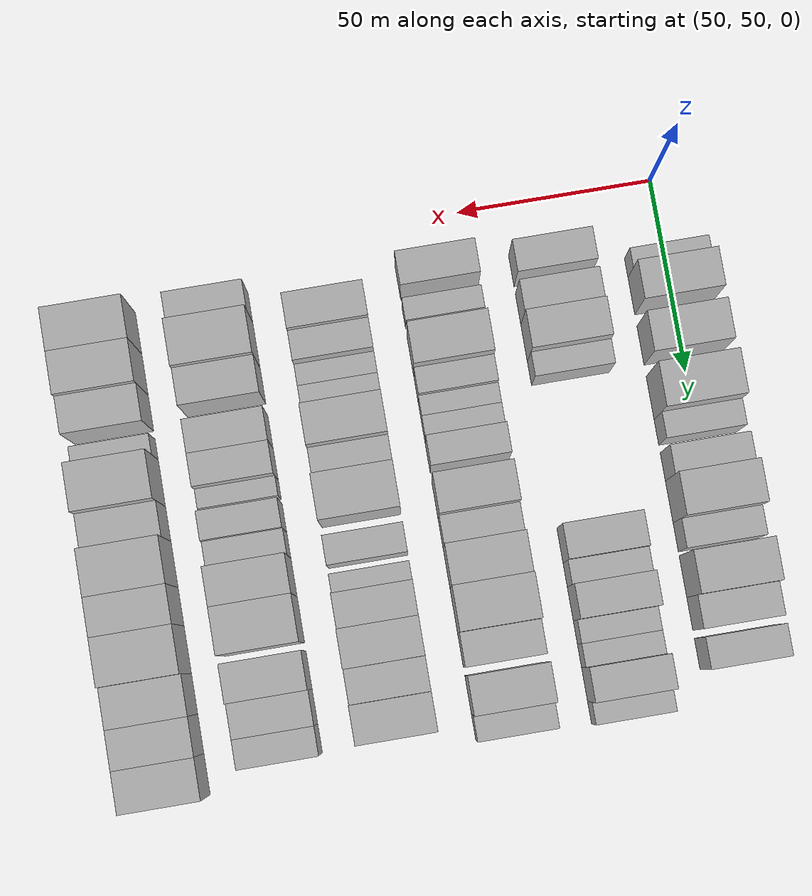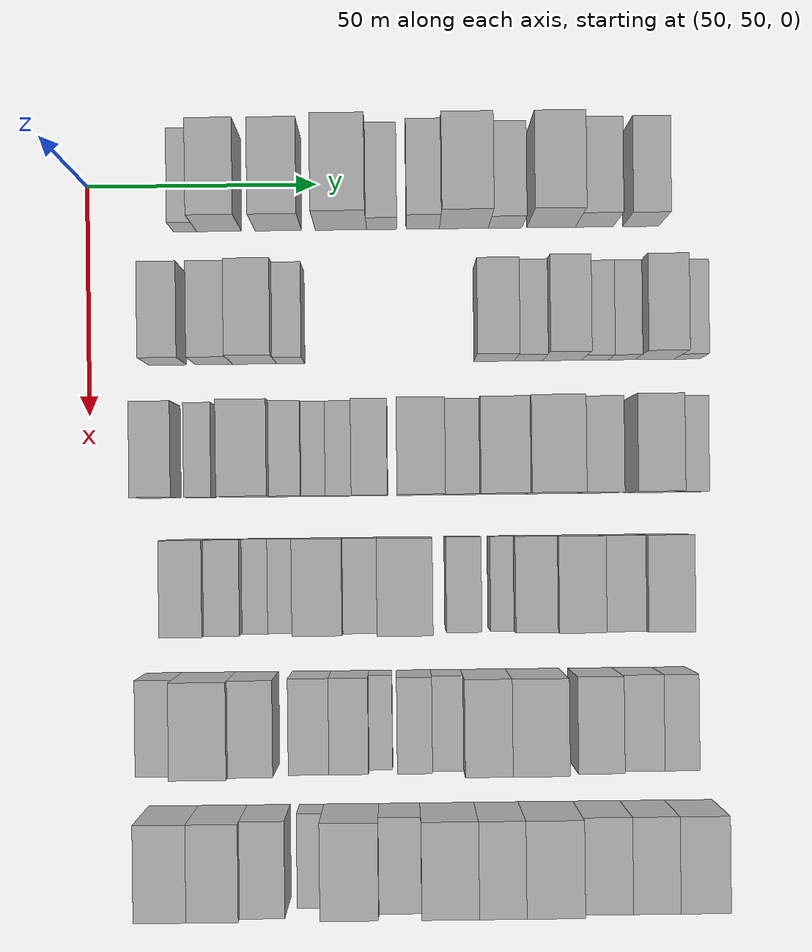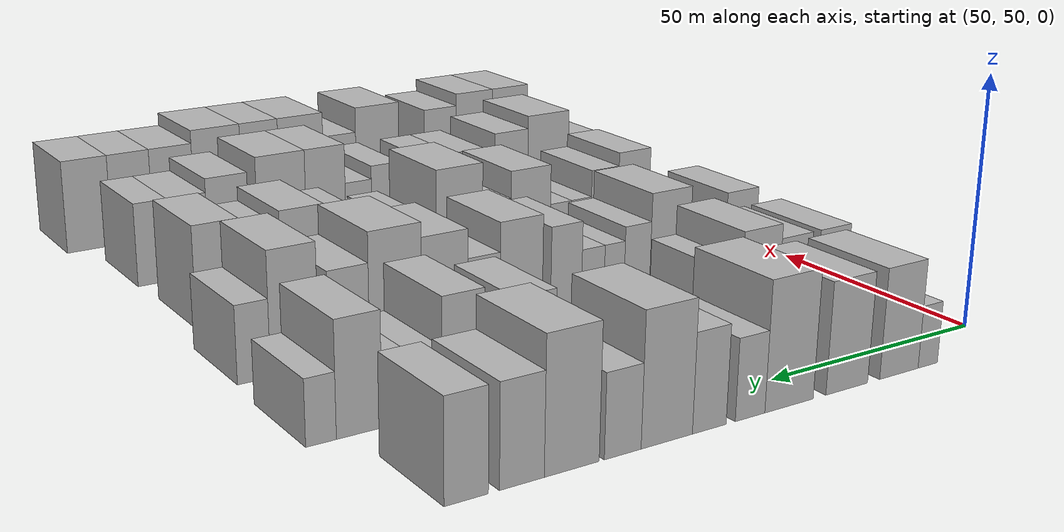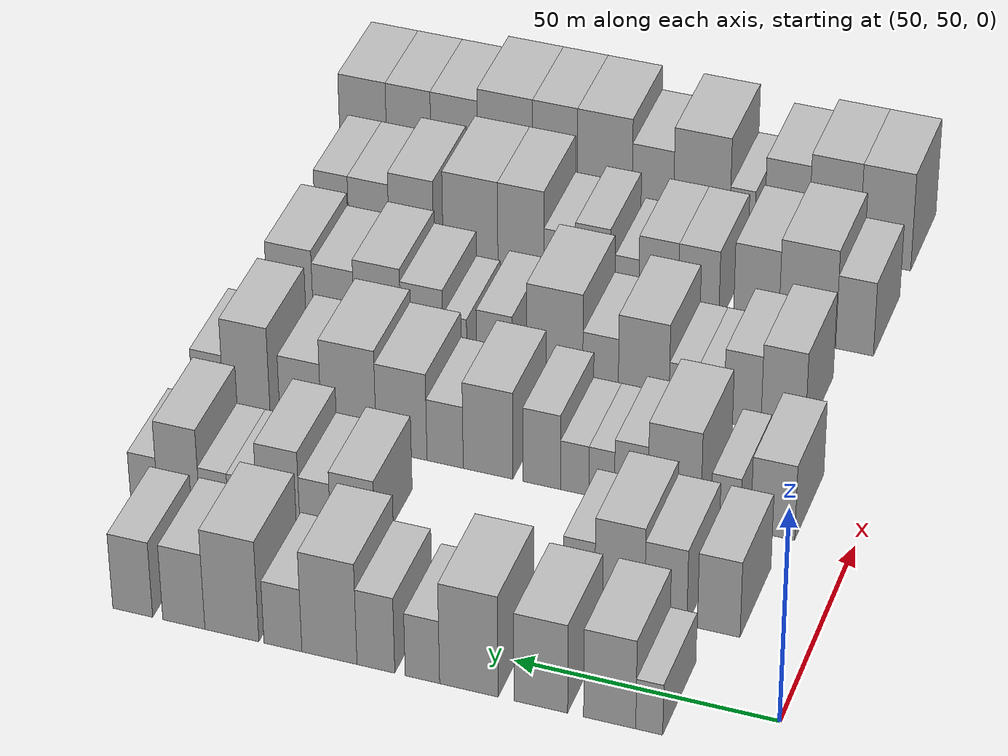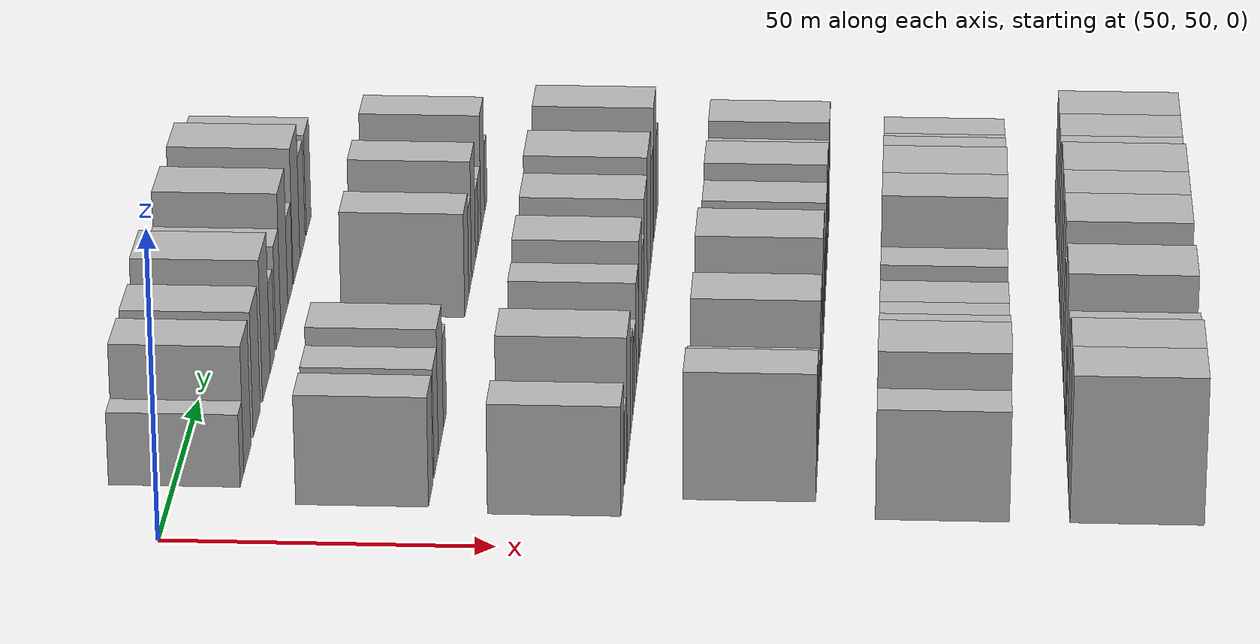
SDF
<sdf version="1.6">
 <world name="default">
  <model name="building_59">
   <static>1</static>
   <pose>50.0000 71.2765 0 0.000000 0.000000 0.000000</pose>
   <link name="link">
    <pose>0 0 6.00 0 0 0</pose>
    <collision name="collision"><geometry><box><size>20.0000 5.0256 12.0000</size></box></geometry></collision>
    <visual name="visual">
     <cast_shadows>0</cast_shadows>
     <geometry><box><size>20.0000 5.0256 12.0000</size></box></geometry>
     <material>
      <script>
       <uri>model://HANNAS_wall/materials/scripts</uri>
       <uri>model://HANNAS_wall/materials/textures</uri>
       <name>vrc/HANNAS_wall</name>
      </script>
     </material>
    </visual>
   </link>
  </model>
  <model name="building_60">
   <static>1</static>
   <pose>50.0000 78.6644 0 0.000000 0.000000 0.000000</pose>
   <link name="link">
    <pose>0 0 10.50 0 0 0</pose>
    <collision name="collision"><geometry><box><size>20.0000 9.7502 21.0000</size></box></geometry></collision>
    <visual name="visual">
     <cast_shadows>0</cast_shadows>
     <geometry><box><size>20.0000 9.7502 21.0000</size></box></geometry>
     <material>
      <script>
       <uri>model://HANNAS_wall/materials/scripts</uri>
       <uri>model://HANNAS_wall/materials/textures</uri>
       <name>vrc/HANNAS_wall</name>
      </script>
     </material>
    </visual>
   </link>
  </model>
  <model name="building_61">
   <static>1</static>
   <pose>50.0000 91.5920 0 0.000000 0.000000 0.000000</pose>
   <link name="link">
    <pose>0 0 10.50 0 0 0</pose>
    <collision name="collision"><geometry><box><size>20.0000 10.1051 21.0000</size></box></geometry></collision>
    <visual name="visual">
     <cast_shadows>0</cast_shadows>
     <geometry><box><size>20.0000 10.1051 21.0000</size></box></geometry>
     <material>
      <script>
       <uri>model://HANNAS_wall/materials/scripts</uri>
       <uri>model://HANNAS_wall/materials/textures</uri>
       <name>vrc/HANNAS_wall</name>
      </script>
     </material>
    </visual>
   </link>
  </model>
  <model name="building_62">
   <static>1</static>
   <pose>50.0000 105.2133 0 0.000000 0.000000 0.000000</pose>
   <link name="link">
    <pose>0 0 12.00 0 0 0</pose>
    <collision name="collision"><geometry><box><size>20.0000 11.1373 24.0000</size></box></geometry></collision>
    <visual name="visual">
     <cast_shadows>0</cast_shadows>
     <geometry><box><size>20.0000 11.1373 24.0000</size></box></geometry>
     <material>
      <script>
       <uri>model://HANNAS_wall/materials/scripts</uri>
       <uri>model://HANNAS_wall/materials/textures</uri>
       <name>vrc/HANNAS_wall</name>
      </script>
     </material>
    </visual>
   </link>
  </model>
  <model name="building_63">
   <static>1</static>
   <pose>50.0000 114.0732 0 0.000000 0.000000 0.000000</pose>
   <link name="link">
    <pose>0 0 7.50 0 0 0</pose>
    <collision name="collision"><geometry><box><size>20.0000 6.5826 15.0000</size></box></geometry></collision>
    <visual name="visual">
     <cast_shadows>0</cast_shadows>
     <geometry><box><size>20.0000 6.5826 15.0000</size></box></geometry>
     <material>
      <script>
       <uri>model://HANNAS_wall/materials/scripts</uri>
       <uri>model://HANNAS_wall/materials/textures</uri>
       <name>vrc/HANNAS_wall</name>
      </script>
     </material>
    </visual>
   </link>
  </model>
  <model name="building_64">
   <static>1</static>
   <pose>50.0000 122.9927 0 0.000000 0.000000 0.000000</pose>
   <link name="link">
    <pose>0 0 9.00 0 0 0</pose>
    <collision name="collision"><geometry><box><size>20.0000 7.2562 18.0000</size></box></geometry></collision>
    <visual name="visual">
     <cast_shadows>0</cast_shadows>
     <geometry><box><size>20.0000 7.2562 18.0000</size></box></geometry>
     <material>
      <script>
       <uri>model://HANNAS_wall/materials/scripts</uri>
       <uri>model://HANNAS_wall/materials/textures</uri>
       <name>vrc/HANNAS_wall</name>
      </script>
     </material>
    </visual>
   </link>
  </model>
  <model name="building_65">
   <static>1</static>
   <pose>50.0000 131.9521 0 0.000000 0.000000 0.000000</pose>
   <link name="link">
    <pose>0 0 12.00 0 0 0</pose>
    <collision name="collision"><geometry><box><size>20.0000 10.6626 24.0000</size></box></geometry></collision>
    <visual name="visual">
     <cast_shadows>0</cast_shadows>
     <geometry><box><size>20.0000 10.6626 24.0000</size></box></geometry>
     <material>
      <script>
       <uri>model://HANNAS_wall/materials/scripts</uri>
       <uri>model://HANNAS_wall/materials/textures</uri>
       <name>vrc/HANNAS_wall</name>
      </script>
     </material>
    </visual>
   </link>
  </model>
  <model name="building_66">
   <static>1</static>
   <pose>50.0000 140.9711 0 0.000000 0.000000 0.000000</pose>
   <link name="link">
    <pose>0 0 7.50 0 0 0</pose>
    <collision name="collision"><geometry><box><size>20.0000 7.3756 15.0000</size></box></geometry></collision>
    <visual name="visual">
     <cast_shadows>0</cast_shadows>
     <geometry><box><size>20.0000 7.3756 15.0000</size></box></geometry>
     <material>
      <script>
       <uri>model://HANNAS_wall/materials/scripts</uri>
       <uri>model://HANNAS_wall/materials/textures</uri>
       <name>vrc/HANNAS_wall</name>
      </script>
     </material>
    </visual>
   </link>
  </model>
  <model name="building_67">
   <static>1</static>
   <pose>50.0000 150.9445 0 0.000000 0.000000 0.000000</pose>
   <link name="link">
    <pose>0 0 12.00 0 0 0</pose>
    <collision name="collision"><geometry><box><size>20.0000 10.5712 24.0000</size></box></geometry></collision>
    <visual name="visual">
     <cast_shadows>0</cast_shadows>
     <geometry><box><size>20.0000 10.5712 24.0000</size></box></geometry>
     <material>
      <script>
       <uri>model://HANNAS_wall/materials/scripts</uri>
       <uri>model://HANNAS_wall/materials/textures</uri>
       <name>vrc/HANNAS_wall</name>
      </script>
     </material>
    </visual>
   </link>
  </model>
  <model name="building_68">
   <static>1</static>
   <pose>50.0000 160.3750 0 0.000000 0.000000 0.000000</pose>
   <link name="link">
    <pose>0 0 9.00 0 0 0</pose>
    <collision name="collision"><geometry><box><size>20.0000 8.2898 18.0000</size></box></geometry></collision>
    <visual name="visual">
     <cast_shadows>0</cast_shadows>
     <geometry><box><size>20.0000 8.2898 18.0000</size></box></geometry>
     <material>
      <script>
       <uri>model://HANNAS_wall/materials/scripts</uri>
       <uri>model://HANNAS_wall/materials/textures</uri>
       <name>vrc/HANNAS_wall</name>
      </script>
     </material>
    </visual>
   </link>
  </model>
  <model name="building_69">
   <static>1</static>
   <pose>50.0000 170.4607 0 0.000000 0.000000 0.000000</pose>
   <link name="link">
    <pose>0 0 9.00 0 0 0</pose>
    <collision name="collision"><geometry><box><size>20.0000 7.8815 18.0000</size></box></geometry></collision>
    <visual name="visual">
     <cast_shadows>0</cast_shadows>
     <geometry><box><size>20.0000 7.8815 18.0000</size></box></geometry>
     <material>
      <script>
       <uri>model://HANNAS_wall/materials/scripts</uri>
       <uri>model://HANNAS_wall/materials/textures</uri>
       <name>vrc/HANNAS_wall</name>
      </script>
     </material>
    </visual>
   </link>
  </model>
  <model name="building_170">
   <static>1</static>
   <pose>79.0000 67.1864 0 0.000000 0.000000 0.000000</pose>
   <link name="link">
    <pose>0 0 9.00 0 0 0</pose>
    <collision name="collision"><geometry><box><size>20.0000 8.1418 18.0000</size></box></geometry></collision>
    <visual name="visual">
     <cast_shadows>0</cast_shadows>
     <geometry><box><size>20.0000 8.1418 18.0000</size></box></geometry>
     <material>
      <script>
       <uri>model://HANNAS_wall/materials/scripts</uri>
       <uri>model://HANNAS_wall/materials/textures</uri>
       <name>vrc/HANNAS_wall</name>
      </script>
     </material>
    </visual>
   </link>
  </model>
  <model name="building_171">
   <static>1</static>
   <pose>79.0000 77.3039 0 0.000000 0.000000 0.000000</pose>
   <link name="link">
    <pose>0 0 9.00 0 0 0</pose>
    <collision name="collision"><geometry><box><size>20.0000 8.0931 18.0000</size></box></geometry></collision>
    <visual name="visual">
     <cast_shadows>0</cast_shadows>
     <geometry><box><size>20.0000 8.0931 18.0000</size></box></geometry>
     <material>
      <script>
       <uri>model://HANNAS_wall/materials/scripts</uri>
       <uri>model://HANNAS_wall/materials/textures</uri>
       <name>vrc/HANNAS_wall</name>
      </script>
     </material>
    </visual>
   </link>
  </model>
  <model name="building_172">
   <static>1</static>
   <pose>79.0000 86.1343 0 0.000000 0.000000 0.000000</pose>
   <link name="link">
    <pose>0 0 10.50 0 0 0</pose>
    <collision name="collision"><geometry><box><size>20.0000 9.5676 21.0000</size></box></geometry></collision>
    <visual name="visual">
     <cast_shadows>0</cast_shadows>
     <geometry><box><size>20.0000 9.5676 21.0000</size></box></geometry>
     <material>
      <script>
       <uri>model://HANNAS_wall/materials/scripts</uri>
       <uri>model://HANNAS_wall/materials/textures</uri>
       <name>vrc/HANNAS_wall</name>
      </script>
     </material>
    </visual>
   </link>
  </model>
  <model name="building_173">
   <static>1</static>
   <pose>79.0000 93.9725 0 0.000000 0.000000 0.000000</pose>
   <link name="link">
    <pose>0 0 7.50 0 0 0</pose>
    <collision name="collision"><geometry><box><size>20.0000 6.1089 15.0000</size></box></geometry></collision>
    <visual name="visual">
     <cast_shadows>0</cast_shadows>
     <geometry><box><size>20.0000 6.1089 15.0000</size></box></geometry>
     <material>
      <script>
       <uri>model://HANNAS_wall/materials/scripts</uri>
       <uri>model://HANNAS_wall/materials/textures</uri>
       <name>vrc/HANNAS_wall</name>
      </script>
     </material>
    </visual>
   </link>
  </model>
  <model name="building_174">
   <static>1</static>
   <pose>79.0000 138.2410 0 0.000000 0.000000 0.000000</pose>
   <link name="link">
    <pose>0 0 9.00 0 0 0</pose>
    <collision name="collision"><geometry><box><size>20.0000 8.8094 18.0000</size></box></geometry></collision>
    <visual name="visual">
     <cast_shadows>0</cast_shadows>
     <geometry><box><size>20.0000 8.8094 18.0000</size></box></geometry>
     <material>
      <script>
       <uri>model://HANNAS_wall/materials/scripts</uri>
       <uri>model://HANNAS_wall/materials/textures</uri>
       <name>vrc/HANNAS_wall</name>
      </script>
     </material>
    </visual>
   </link>
  </model>
  <model name="building_175">
   <static>1</static>
   <pose>79.0000 145.7016 0 0.000000 0.000000 0.000000</pose>
   <link name="link">
    <pose>0 0 7.50 0 0 0</pose>
    <collision name="collision"><geometry><box><size>20.0000 6.1118 15.0000</size></box></geometry></collision>
    <visual name="visual">
     <cast_shadows>0</cast_shadows>
     <geometry><box><size>20.0000 6.1118 15.0000</size></box></geometry>
     <material>
      <script>
       <uri>model://HANNAS_wall/materials/scripts</uri>
       <uri>model://HANNAS_wall/materials/textures</uri>
       <name>vrc/HANNAS_wall</name>
      </script>
     </material>
    </visual>
   </link>
  </model>
  <model name="building_176">
   <static>1</static>
   <pose>79.0000 153.0103 0 0.000000 0.000000 0.000000</pose>
   <link name="link">
    <pose>0 0 10.50 0 0 0</pose>
    <collision name="collision"><geometry><box><size>20.0000 8.5057 21.0000</size></box></geometry></collision>
    <visual name="visual">
     <cast_shadows>0</cast_shadows>
     <geometry><box><size>20.0000 8.5057 21.0000</size></box></geometry>
     <material>
      <script>
       <uri>model://HANNAS_wall/materials/scripts</uri>
       <uri>model://HANNAS_wall/materials/textures</uri>
       <name>vrc/HANNAS_wall</name>
      </script>
     </material>
    </visual>
   </link>
  </model>
  <model name="building_177">
   <static>1</static>
   <pose>79.0000 160.2039 0 0.000000 0.000000 0.000000</pose>
   <link name="link">
    <pose>0 0 6.00 0 0 0</pose>
    <collision name="collision"><geometry><box><size>20.0000 5.8815 12.0000</size></box></geometry></collision>
    <visual name="visual">
     <cast_shadows>0</cast_shadows>
     <geometry><box><size>20.0000 5.8815 12.0000</size></box></geometry>
     <material>
      <script>
       <uri>model://HANNAS_wall/materials/scripts</uri>
       <uri>model://HANNAS_wall/materials/textures</uri>
       <name>vrc/HANNAS_wall</name>
      </script>
     </material>
    </visual>
   </link>
  </model>
  <model name="building_178">
   <static>1</static>
   <pose>79.0000 166.0472 0 0.000000 0.000000 0.000000</pose>
   <link name="link">
    <pose>0 0 6.00 0 0 0</pose>
    <collision name="collision"><geometry><box><size>20.0000 5.8051 12.0000</size></box></geometry></collision>
    <visual name="visual">
     <cast_shadows>0</cast_shadows>
     <geometry><box><size>20.0000 5.8051 12.0000</size></box></geometry>
     <material>
      <script>
       <uri>model://HANNAS_wall/materials/scripts</uri>
       <uri>model://HANNAS_wall/materials/textures</uri>
       <name>vrc/HANNAS_wall</name>
      </script>
     </material>
    </visual>
   </link>
  </model>
  <model name="building_179">
   <static>1</static>
   <pose>79.0000 173.2025 0 0.000000 0.000000 0.000000</pose>
   <link name="link">
    <pose>0 0 10.50 0 0 0</pose>
    <collision name="collision"><geometry><box><size>20.0000 8.5056 21.0000</size></box></geometry></collision>
    <visual name="visual">
     <cast_shadows>0</cast_shadows>
     <geometry><box><size>20.0000 8.5056 21.0000</size></box></geometry>
     <material>
      <script>
       <uri>model://HANNAS_wall/materials/scripts</uri>
       <uri>model://HANNAS_wall/materials/textures</uri>
       <name>vrc/HANNAS_wall</name>
      </script>
     </material>
    </visual>
   </link>
  </model>
  <model name="building_180">
   <static>1</static>
   <pose>79.0000 180.2479 0 0.000000 0.000000 0.000000</pose>
   <link name="link">
    <pose>0 0 6.00 0 0 0</pose>
    <collision name="collision"><geometry><box><size>20.0000 5.5852 12.0000</size></box></geometry></collision>
    <visual name="visual">
     <cast_shadows>0</cast_shadows>
     <geometry><box><size>20.0000 5.5852 12.0000</size></box></geometry>
     <material>
      <script>
       <uri>model://HANNAS_wall/materials/scripts</uri>
       <uri>model://HANNAS_wall/materials/textures</uri>
       <name>vrc/HANNAS_wall</name>
      </script>
     </material>
    </visual>
   </link>
  </model>
  <model name="building_286">
   <static>1</static>
   <pose>108.0000 65.4353 0 0.000000 0.000000 0.000000</pose>
   <link name="link">
    <pose>0 0 9.00 0 0 0</pose>
    <collision name="collision"><geometry><box><size>20.0000 8.5730 18.0000</size></box></geometry></collision>
    <visual name="visual">
     <cast_shadows>0</cast_shadows>
     <geometry><box><size>20.0000 8.5730 18.0000</size></box></geometry>
     <material>
      <script>
       <uri>model://HANNAS_wall/materials/scripts</uri>
       <uri>model://HANNAS_wall/materials/textures</uri>
       <name>vrc/HANNAS_wall</name>
      </script>
     </material>
    </visual>
   </link>
  </model>
  <model name="building_287">
   <static>1</static>
   <pose>108.0000 74.5970 0 0.000000 0.000000 0.000000</pose>
   <link name="link">
    <pose>0 0 6.00 0 0 0</pose>
    <collision name="collision"><geometry><box><size>20.0000 5.7506 12.0000</size></box></geometry></collision>
    <visual name="visual">
     <cast_shadows>0</cast_shadows>
     <geometry><box><size>20.0000 5.7506 12.0000</size></box></geometry>
     <material>
      <script>
       <uri>model://HANNAS_wall/materials/scripts</uri>
       <uri>model://HANNAS_wall/materials/textures</uri>
       <name>vrc/HANNAS_wall</name>
      </script>
     </material>
    </visual>
   </link>
  </model>
  <model name="building_288">
   <static>1</static>
   <pose>108.0000 84.6793 0 0.000000 0.000000 0.000000</pose>
   <link name="link">
    <pose>0 0 10.50 0 0 0</pose>
    <collision name="collision"><geometry><box><size>20.0000 10.4141 21.0000</size></box></geometry></collision>
    <visual name="visual">
     <cast_shadows>0</cast_shadows>
     <geometry><box><size>20.0000 10.4141 21.0000</size></box></geometry>
     <material>
      <script>
       <uri>model://HANNAS_wall/materials/scripts</uri>
       <uri>model://HANNAS_wall/materials/textures</uri>
       <name>vrc/HANNAS_wall</name>
      </script>
     </material>
    </visual>
   </link>
  </model>
  <model name="building_289">
   <static>1</static>
   <pose>108.0000 93.1975 0 0.000000 0.000000 0.000000</pose>
   <link name="link">
    <pose>0 0 7.50 0 0 0</pose>
    <collision name="collision"><geometry><box><size>20.0000 6.6223 15.0000</size></box></geometry></collision>
    <visual name="visual">
     <cast_shadows>0</cast_shadows>
     <geometry><box><size>20.0000 6.6223 15.0000</size></box></geometry>
     <material>
      <script>
       <uri>model://HANNAS_wall/materials/scripts</uri>
       <uri>model://HANNAS_wall/materials/textures</uri>
       <name>vrc/HANNAS_wall</name>
      </script>
     </material>
    </visual>
   </link>
  </model>
  <model name="building_290">
   <static>1</static>
   <pose>108.0000 99.0473 0 0.000000 0.000000 0.000000</pose>
   <link name="link">
    <pose>0 0 6.00 0 0 0</pose>
    <collision name="collision"><geometry><box><size>20.0000 5.0772 12.0000</size></box></geometry></collision>
    <visual name="visual">
     <cast_shadows>0</cast_shadows>
     <geometry><box><size>20.0000 5.0772 12.0000</size></box></geometry>
     <material>
      <script>
       <uri>model://HANNAS_wall/materials/scripts</uri>
       <uri>model://HANNAS_wall/materials/textures</uri>
       <name>vrc/HANNAS_wall</name>
      </script>
     </material>
    </visual>
   </link>
  </model>
  <model name="building_291">
   <static>1</static>
   <pose>108.0000 104.4109 0 0.000000 0.000000 0.000000</pose>
   <link name="link">
    <pose>0 0 6.00 0 0 0</pose>
    <collision name="collision"><geometry><box><size>20.0000 5.6502 12.0000</size></box></geometry></collision>
    <visual name="visual">
     <cast_shadows>0</cast_shadows>
     <geometry><box><size>20.0000 5.6502 12.0000</size></box></geometry>
     <material>
      <script>
       <uri>model://HANNAS_wall/materials/scripts</uri>
       <uri>model://HANNAS_wall/materials/textures</uri>
       <name>vrc/HANNAS_wall</name>
      </script>
     </material>
    </visual>
   </link>
  </model>
  <model name="building_292">
   <static>1</static>
   <pose>108.0000 110.9953 0 0.000000 0.000000 0.000000</pose>
   <link name="link">
    <pose>0 0 9.00 0 0 0</pose>
    <collision name="collision"><geometry><box><size>20.0000 7.5186 18.0000</size></box></geometry></collision>
    <visual name="visual">
     <cast_shadows>0</cast_shadows>
     <geometry><box><size>20.0000 7.5186 18.0000</size></box></geometry>
     <material>
      <script>
       <uri>model://HANNAS_wall/materials/scripts</uri>
       <uri>model://HANNAS_wall/materials/textures</uri>
       <name>vrc/HANNAS_wall</name>
      </script>
     </material>
    </visual>
   </link>
  </model>
  <model name="building_293">
   <static>1</static>
   <pose>108.0000 121.7536 0 0.000000 0.000000 0.000000</pose>
   <link name="link">
    <pose>0 0 10.50 0 0 0</pose>
    <collision name="collision"><geometry><box><size>20.0000 9.9981 21.0000</size></box></geometry></collision>
    <visual name="visual">
     <cast_shadows>0</cast_shadows>
     <geometry><box><size>20.0000 9.9981 21.0000</size></box></geometry>
     <material>
      <script>
       <uri>model://HANNAS_wall/materials/scripts</uri>
       <uri>model://HANNAS_wall/materials/textures</uri>
       <name>vrc/HANNAS_wall</name>
      </script>
     </material>
    </visual>
   </link>
  </model>
  <model name="building_294">
   <static>1</static>
   <pose>108.0000 130.4193 0 0.000000 0.000000 0.000000</pose>
   <link name="link">
    <pose>0 0 7.50 0 0 0</pose>
    <collision name="collision"><geometry><box><size>20.0000 7.3334 15.0000</size></box></geometry></collision>
    <visual name="visual">
     <cast_shadows>0</cast_shadows>
     <geometry><box><size>20.0000 7.3334 15.0000</size></box></geometry>
     <material>
      <script>
       <uri>model://HANNAS_wall/materials/scripts</uri>
       <uri>model://HANNAS_wall/materials/textures</uri>
       <name>vrc/HANNAS_wall</name>
      </script>
     </material>
    </visual>
   </link>
  </model>
  <model name="building_295">
   <static>1</static>
   <pose>108.0000 139.2262 0 0.000000 0.000000 0.000000</pose>
   <link name="link">
    <pose>0 0 10.50 0 0 0</pose>
    <collision name="collision"><geometry><box><size>20.0000 10.2804 21.0000</size></box></geometry></collision>
    <visual name="visual">
     <cast_shadows>0</cast_shadows>
     <geometry><box><size>20.0000 10.2804 21.0000</size></box></geometry>
     <material>
      <script>
       <uri>model://HANNAS_wall/materials/scripts</uri>
       <uri>model://HANNAS_wall/materials/textures</uri>
       <name>vrc/HANNAS_wall</name>
      </script>
     </material>
    </visual>
   </link>
  </model>
  <model name="building_296">
   <static>1</static>
   <pose>108.0000 149.9670 0 0.000000 0.000000 0.000000</pose>
   <link name="link">
    <pose>0 0 12.00 0 0 0</pose>
    <collision name="collision"><geometry><box><size>20.0000 11.2011 24.0000</size></box></geometry></collision>
    <visual name="visual">
     <cast_shadows>0</cast_shadows>
     <geometry><box><size>20.0000 11.2011 24.0000</size></box></geometry>
     <material>
      <script>
       <uri>model://HANNAS_wall/materials/scripts</uri>
       <uri>model://HANNAS_wall/materials/textures</uri>
       <name>vrc/HANNAS_wall</name>
      </script>
     </material>
    </visual>
   </link>
  </model>
  <model name="building_297">
   <static>1</static>
   <pose>108.0000 159.8239 0 0.000000 0.000000 0.000000</pose>
   <link name="link">
    <pose>0 0 9.00 0 0 0</pose>
    <collision name="collision"><geometry><box><size>20.0000 8.5128 18.0000</size></box></geometry></collision>
    <visual name="visual">
     <cast_shadows>0</cast_shadows>
     <geometry><box><size>20.0000 8.5128 18.0000</size></box></geometry>
     <material>
      <script>
       <uri>model://HANNAS_wall/materials/scripts</uri>
       <uri>model://HANNAS_wall/materials/textures</uri>
       <name>vrc/HANNAS_wall</name>
      </script>
     </material>
    </visual>
   </link>
  </model>
  <model name="building_298">
   <static>1</static>
   <pose>108.0000 170.8963 0 0.000000 0.000000 0.000000</pose>
   <link name="link">
    <pose>0 0 12.00 0 0 0</pose>
    <collision name="collision"><geometry><box><size>20.0000 9.6320 24.0000</size></box></geometry></collision>
    <visual name="visual">
     <cast_shadows>0</cast_shadows>
     <geometry><box><size>20.0000 9.6320 24.0000</size></box></geometry>
     <material>
      <script>
       <uri>model://HANNAS_wall/materials/scripts</uri>
       <uri>model://HANNAS_wall/materials/textures</uri>
       <name>vrc/HANNAS_wall</name>
      </script>
     </material>
    </visual>
   </link>
  </model>
  <model name="building_299">
   <static>1</static>
   <pose>108.0000 178.9444 0 0.000000 0.000000 0.000000</pose>
   <link name="link">
    <pose>0 0 7.50 0 0 0</pose>
    <collision name="collision"><geometry><box><size>20.0000 6.4642 15.0000</size></box></geometry></collision>
    <visual name="visual">
     <cast_shadows>0</cast_shadows>
     <geometry><box><size>20.0000 6.4642 15.0000</size></box></geometry>
     <material>
      <script>
       <uri>model://HANNAS_wall/materials/scripts</uri>
       <uri>model://HANNAS_wall/materials/textures</uri>
       <name>vrc/HANNAS_wall</name>
      </script>
     </material>
    </visual>
   </link>
  </model>
  <model name="building_399">
   <static>1</static>
   <pose>137.0000 71.8548 0 0.000000 0.000000 0.000000</pose>
   <link name="link">
    <pose>0 0 10.50 0 0 0</pose>
    <collision name="collision"><geometry><box><size>20.0000 8.8465 21.0000</size></box></geometry></collision>
    <visual name="visual">
     <cast_shadows>0</cast_shadows>
     <geometry><box><size>20.0000 8.8465 21.0000</size></box></geometry>
     <material>
      <script>
       <uri>model://HANNAS_wall/materials/scripts</uri>
       <uri>model://HANNAS_wall/materials/textures</uri>
       <name>vrc/HANNAS_wall</name>
      </script>
     </material>
    </visual>
   </link>
  </model>
  <model name="building_400">
   <static>1</static>
   <pose>137.0000 80.0066 0 0.000000 0.000000 0.000000</pose>
   <link name="link">
    <pose>0 0 9.00 0 0 0</pose>
    <collision name="collision"><geometry><box><size>20.0000 7.4571 18.0000</size></box></geometry></collision>
    <visual name="visual">
     <cast_shadows>0</cast_shadows>
     <geometry><box><size>20.0000 7.4571 18.0000</size></box></geometry>
     <material>
      <script>
       <uri>model://HANNAS_wall/materials/scripts</uri>
       <uri>model://HANNAS_wall/materials/textures</uri>
       <name>vrc/HANNAS_wall</name>
      </script>
     </material>
    </visual>
   </link>
  </model>
  <model name="building_401">
   <static>1</static>
   <pose>137.0000 86.4388 0 0.000000 0.000000 0.000000</pose>
   <link name="link">
    <pose>0 0 6.00 0 0 0</pose>
    <collision name="collision"><geometry><box><size>20.0000 5.4074 12.0000</size></box></geometry></collision>
    <visual name="visual">
     <cast_shadows>0</cast_shadows>
     <geometry><box><size>20.0000 5.4074 12.0000</size></box></geometry>
     <material>
      <script>
       <uri>model://HANNAS_wall/materials/scripts</uri>
       <uri>model://HANNAS_wall/materials/textures</uri>
       <name>vrc/HANNAS_wall</name>
      </script>
     </material>
    </visual>
   </link>
  </model>
  <model name="building_402">
   <static>1</static>
   <pose>137.0000 91.9777 0 0.000000 0.000000 0.000000</pose>
   <link name="link">
    <pose>0 0 6.00 0 0 0</pose>
    <collision name="collision"><geometry><box><size>20.0000 5.6704 12.0000</size></box></geometry></collision>
    <visual name="visual">
     <cast_shadows>0</cast_shadows>
     <geometry><box><size>20.0000 5.6704 12.0000</size></box></geometry>
     <material>
      <script>
       <uri>model://HANNAS_wall/materials/scripts</uri>
       <uri>model://HANNAS_wall/materials/textures</uri>
       <name>vrc/HANNAS_wall</name>
      </script>
     </material>
    </visual>
   </link>
  </model>
  <model name="building_403">
   <static>1</static>
   <pose>137.0000 99.9625 0 0.000000 0.000000 0.000000</pose>
   <link name="link">
    <pose>0 0 10.50 0 0 0</pose>
    <collision name="collision"><geometry><box><size>20.0000 10.2993 21.0000</size></box></geometry></collision>
    <visual name="visual">
     <cast_shadows>0</cast_shadows>
     <geometry><box><size>20.0000 10.2993 21.0000</size></box></geometry>
     <material>
      <script>
       <uri>model://HANNAS_wall/materials/scripts</uri>
       <uri>model://HANNAS_wall/materials/textures</uri>
       <name>vrc/HANNAS_wall</name>
      </script>
     </material>
    </visual>
   </link>
  </model>
  <model name="building_404">
   <static>1</static>
   <pose>137.0000 108.7412 0 0.000000 0.000000 0.000000</pose>
   <link name="link">
    <pose>0 0 7.50 0 0 0</pose>
    <collision name="collision"><geometry><box><size>20.0000 7.2581 15.0000</size></box></geometry></collision>
    <visual name="visual">
     <cast_shadows>0</cast_shadows>
     <geometry><box><size>20.0000 7.2581 15.0000</size></box></geometry>
     <material>
      <script>
       <uri>model://HANNAS_wall/materials/scripts</uri>
       <uri>model://HANNAS_wall/materials/textures</uri>
       <name>vrc/HANNAS_wall</name>
      </script>
     </material>
    </visual>
   </link>
  </model>
  <model name="building_405">
   <static>1</static>
   <pose>137.0000 118.0912 0 0.000000 0.000000 0.000000</pose>
   <link name="link">
    <pose>0 0 12.00 0 0 0</pose>
    <collision name="collision"><geometry><box><size>20.0000 11.4418 24.0000</size></box></geometry></collision>
    <visual name="visual">
     <cast_shadows>0</cast_shadows>
     <geometry><box><size>20.0000 11.4418 24.0000</size></box></geometry>
     <material>
      <script>
       <uri>model://HANNAS_wall/materials/scripts</uri>
       <uri>model://HANNAS_wall/materials/textures</uri>
       <name>vrc/HANNAS_wall</name>
      </script>
     </material>
    </visual>
   </link>
  </model>
  <model name="building_406">
   <static>1</static>
   <pose>137.0000 130.5070 0 0.000000 0.000000 0.000000</pose>
   <link name="link">
    <pose>0 0 7.50 0 0 0</pose>
    <collision name="collision"><geometry><box><size>20.0000 7.3897 15.0000</size></box></geometry></collision>
    <visual name="visual">
     <cast_shadows>0</cast_shadows>
     <geometry><box><size>20.0000 7.3897 15.0000</size></box></geometry>
     <material>
      <script>
       <uri>model://HANNAS_wall/materials/scripts</uri>
       <uri>model://HANNAS_wall/materials/textures</uri>
       <name>vrc/HANNAS_wall</name>
      </script>
     </material>
    </visual>
   </link>
  </model>
  <model name="building_407">
   <static>1</static>
   <pose>137.0000 138.6598 0 0.000000 0.000000 0.000000</pose>
   <link name="link">
    <pose>0 0 6.00 0 0 0</pose>
    <collision name="collision"><geometry><box><size>20.0000 4.9159 12.0000</size></box></geometry></collision>
    <visual name="visual">
     <cast_shadows>0</cast_shadows>
     <geometry><box><size>20.0000 4.9159 12.0000</size></box></geometry>
     <material>
      <script>
       <uri>model://HANNAS_wall/materials/scripts</uri>
       <uri>model://HANNAS_wall/materials/textures</uri>
       <name>vrc/HANNAS_wall</name>
      </script>
     </material>
    </visual>
   </link>
  </model>
  <model name="building_408">
   <static>1</static>
   <pose>137.0000 145.5115 0 0.000000 0.000000 0.000000</pose>
   <link name="link">
    <pose>0 0 9.00 0 0 0</pose>
    <collision name="collision"><geometry><box><size>20.0000 8.7875 18.0000</size></box></geometry></collision>
    <visual name="visual">
     <cast_shadows>0</cast_shadows>
     <geometry><box><size>20.0000 8.7875 18.0000</size></box></geometry>
     <material>
      <script>
       <uri>model://HANNAS_wall/materials/scripts</uri>
       <uri>model://HANNAS_wall/materials/textures</uri>
       <name>vrc/HANNAS_wall</name>
      </script>
     </material>
    </visual>
   </link>
  </model>
  <model name="building_409">
   <static>1</static>
   <pose>137.0000 154.7795 0 0.000000 0.000000 0.000000</pose>
   <link name="link">
    <pose>0 0 10.50 0 0 0</pose>
    <collision name="collision"><geometry><box><size>20.0000 9.7486 21.0000</size></box></geometry></collision>
    <visual name="visual">
     <cast_shadows>0</cast_shadows>
     <geometry><box><size>20.0000 9.7486 21.0000</size></box></geometry>
     <material>
      <script>
       <uri>model://HANNAS_wall/materials/scripts</uri>
       <uri>model://HANNAS_wall/materials/textures</uri>
       <name>vrc/HANNAS_wall</name>
      </script>
     </material>
    </visual>
   </link>
  </model>
  <model name="building_410">
   <static>1</static>
   <pose>137.0000 163.9611 0 0.000000 0.000000 0.000000</pose>
   <link name="link">
    <pose>0 0 9.00 0 0 0</pose>
    <collision name="collision"><geometry><box><size>20.0000 8.6147 18.0000</size></box></geometry></collision>
    <visual name="visual">
     <cast_shadows>0</cast_shadows>
     <geometry><box><size>20.0000 8.6147 18.0000</size></box></geometry>
     <material>
      <script>
       <uri>model://HANNAS_wall/materials/scripts</uri>
       <uri>model://HANNAS_wall/materials/textures</uri>
       <name>vrc/HANNAS_wall</name>
      </script>
     </material>
    </visual>
   </link>
  </model>
  <model name="building_411">
   <static>1</static>
   <pose>137.0000 173.1042 0 0.000000 0.000000 0.000000</pose>
   <link name="link">
    <pose>0 0 10.50 0 0 0</pose>
    <collision name="collision"><geometry><box><size>20.0000 9.6715 21.0000</size></box></geometry></collision>
    <visual name="visual">
     <cast_shadows>0</cast_shadows>
     <geometry><box><size>20.0000 9.6715 21.0000</size></box></geometry>
     <material>
      <script>
       <uri>model://HANNAS_wall/materials/scripts</uri>
       <uri>model://HANNAS_wall/materials/textures</uri>
       <name>vrc/HANNAS_wall</name>
      </script>
     </material>
    </visual>
   </link>
  </model>
  <model name="building_507">
   <static>1</static>
   <pose>166.0000 65.6157 0 0.000000 0.000000 0.000000</pose>
   <link name="link">
    <pose>0 0 9.00 0 0 0</pose>
    <collision name="collision"><geometry><box><size>20.0000 7.7287 18.0000</size></box></geometry></collision>
    <visual name="visual">
     <cast_shadows>0</cast_shadows>
     <geometry><box><size>20.0000 7.7287 18.0000</size></box></geometry>
     <material>
      <script>
       <uri>model://HANNAS_wall/materials/scripts</uri>
       <uri>model://HANNAS_wall/materials/textures</uri>
       <name>vrc/HANNAS_wall</name>
      </script>
     </material>
    </visual>
   </link>
  </model>
  <model name="building_508">
   <static>1</static>
   <pose>166.0000 75.3486 0 0.000000 0.000000 0.000000</pose>
   <link name="link">
    <pose>0 0 12.00 0 0 0</pose>
    <collision name="collision"><geometry><box><size>20.0000 11.7371 24.0000</size></box></geometry></collision>
    <visual name="visual">
     <cast_shadows>0</cast_shadows>
     <geometry><box><size>20.0000 11.7371 24.0000</size></box></geometry>
     <material>
      <script>
       <uri>model://HANNAS_wall/materials/scripts</uri>
       <uri>model://HANNAS_wall/materials/textures</uri>
       <name>vrc/HANNAS_wall</name>
      </script>
     </material>
    </visual>
   </link>
  </model>
  <model name="building_509">
   <static>1</static>
   <pose>166.0000 85.8706 0 0.000000 0.000000 0.000000</pose>
   <link name="link">
    <pose>0 0 10.50 0 0 0</pose>
    <collision name="collision"><geometry><box><size>20.0000 9.3069 21.0000</size></box></geometry></collision>
    <visual name="visual">
     <cast_shadows>0</cast_shadows>
     <geometry><box><size>20.0000 9.3069 21.0000</size></box></geometry>
     <material>
      <script>
       <uri>model://HANNAS_wall/materials/scripts</uri>
       <uri>model://HANNAS_wall/materials/textures</uri>
       <name>vrc/HANNAS_wall</name>
      </script>
     </material>
    </visual>
   </link>
  </model>
  <model name="building_510">
   <static>1</static>
   <pose>166.0000 97.7413 0 0.000000 0.000000 0.000000</pose>
   <link name="link">
    <pose>0 0 9.00 0 0 0</pose>
    <collision name="collision"><geometry><box><size>20.0000 8.4344 18.0000</size></box></geometry></collision>
    <visual name="visual">
     <cast_shadows>0</cast_shadows>
     <geometry><box><size>20.0000 8.4344 18.0000</size></box></geometry>
     <material>
      <script>
       <uri>model://HANNAS_wall/materials/scripts</uri>
       <uri>model://HANNAS_wall/materials/textures</uri>
       <name>vrc/HANNAS_wall</name>
      </script>
     </material>
    </visual>
   </link>
  </model>
  <model name="building_511">
   <static>1</static>
   <pose>166.0000 106.0712 0 0.000000 0.000000 0.000000</pose>
   <link name="link">
    <pose>0 0 9.00 0 0 0</pose>
    <collision name="collision"><geometry><box><size>20.0000 8.2254 18.0000</size></box></geometry></collision>
    <visual name="visual">
     <cast_shadows>0</cast_shadows>
     <geometry><box><size>20.0000 8.2254 18.0000</size></box></geometry>
     <material>
      <script>
       <uri>model://HANNAS_wall/materials/scripts</uri>
       <uri>model://HANNAS_wall/materials/textures</uri>
       <name>vrc/HANNAS_wall</name>
      </script>
     </material>
    </visual>
   </link>
  </model>
  <model name="building_512">
   <static>1</static>
   <pose>166.0000 112.6737 0 0.000000 0.000000 0.000000</pose>
   <link name="link">
    <pose>0 0 6.00 0 0 0</pose>
    <collision name="collision"><geometry><box><size>20.0000 4.9795 12.0000</size></box></geometry></collision>
    <visual name="visual">
     <cast_shadows>0</cast_shadows>
     <geometry><box><size>20.0000 4.9795 12.0000</size></box></geometry>
     <material>
      <script>
       <uri>model://HANNAS_wall/materials/scripts</uri>
       <uri>model://HANNAS_wall/materials/textures</uri>
       <name>vrc/HANNAS_wall</name>
      </script>
     </material>
    </visual>
   </link>
  </model>
  <model name="building_513">
   <static>1</static>
   <pose>166.0000 119.8188 0 0.000000 0.000000 0.000000</pose>
   <link name="link">
    <pose>0 0 9.00 0 0 0</pose>
    <collision name="collision"><geometry><box><size>20.0000 7.3108 18.0000</size></box></geometry></collision>
    <visual name="visual">
     <cast_shadows>0</cast_shadows>
     <geometry><box><size>20.0000 7.3108 18.0000</size></box></geometry>
     <material>
      <script>
       <uri>model://HANNAS_wall/materials/scripts</uri>
       <uri>model://HANNAS_wall/materials/textures</uri>
       <name>vrc/HANNAS_wall</name>
      </script>
     </material>
    </visual>
   </link>
  </model>
  <model name="building_514">
   <static>1</static>
   <pose>166.0000 126.7687 0 0.000000 0.000000 0.000000</pose>
   <link name="link">
    <pose>0 0 7.50 0 0 0</pose>
    <collision name="collision"><geometry><box><size>20.0000 6.5890 15.0000</size></box></geometry></collision>
    <visual name="visual">
     <cast_shadows>0</cast_shadows>
     <geometry><box><size>20.0000 6.5890 15.0000</size></box></geometry>
     <material>
      <script>
       <uri>model://HANNAS_wall/materials/scripts</uri>
       <uri>model://HANNAS_wall/materials/textures</uri>
       <name>vrc/HANNAS_wall</name>
      </script>
     </material>
    </visual>
   </link>
  </model>
  <model name="building_515">
   <static>1</static>
   <pose>166.0000 134.9371 0 0.000000 0.000000 0.000000</pose>
   <link name="link">
    <pose>0 0 12.00 0 0 0</pose>
    <collision name="collision"><geometry><box><size>20.0000 9.7477 24.0000</size></box></geometry></collision>
    <visual name="visual">
     <cast_shadows>0</cast_shadows>
     <geometry><box><size>20.0000 9.7477 24.0000</size></box></geometry>
     <material>
      <script>
       <uri>model://HANNAS_wall/materials/scripts</uri>
       <uri>model://HANNAS_wall/materials/textures</uri>
       <name>vrc/HANNAS_wall</name>
      </script>
     </material>
    </visual>
   </link>
  </model>
  <model name="building_516">
   <static>1</static>
   <pose>166.0000 145.6414 0 0.000000 0.000000 0.000000</pose>
   <link name="link">
    <pose>0 0 12.00 0 0 0</pose>
    <collision name="collision"><geometry><box><size>20.0000 11.6611 24.0000</size></box></geometry></collision>
    <visual name="visual">
     <cast_shadows>0</cast_shadows>
     <geometry><box><size>20.0000 11.6611 24.0000</size></box></geometry>
     <material>
      <script>
       <uri>model://HANNAS_wall/materials/scripts</uri>
       <uri>model://HANNAS_wall/materials/textures</uri>
       <name>vrc/HANNAS_wall</name>
      </script>
     </material>
    </visual>
   </link>
  </model>
  <model name="building_517">
   <static>1</static>
   <pose>166.0000 158.2569 0 0.000000 0.000000 0.000000</pose>
   <link name="link">
    <pose>0 0 10.50 0 0 0</pose>
    <collision name="collision"><geometry><box><size>20.0000 9.5699 21.0000</size></box></geometry></collision>
    <visual name="visual">
     <cast_shadows>0</cast_shadows>
     <geometry><box><size>20.0000 9.5699 21.0000</size></box></geometry>
     <material>
      <script>
       <uri>model://HANNAS_wall/materials/scripts</uri>
       <uri>model://HANNAS_wall/materials/textures</uri>
       <name>vrc/HANNAS_wall</name>
      </script>
     </material>
    </visual>
   </link>
  </model>
  <model name="building_518">
   <static>1</static>
   <pose>166.0000 167.3750 0 0.000000 0.000000 0.000000</pose>
   <link name="link">
    <pose>0 0 9.00 0 0 0</pose>
    <collision name="collision"><geometry><box><size>20.0000 8.6663 18.0000</size></box></geometry></collision>
    <visual name="visual">
     <cast_shadows>0</cast_shadows>
     <geometry><box><size>20.0000 8.6663 18.0000</size></box></geometry>
     <material>
      <script>
       <uri>model://HANNAS_wall/materials/scripts</uri>
       <uri>model://HANNAS_wall/materials/textures</uri>
       <name>vrc/HANNAS_wall</name>
      </script>
     </material>
    </visual>
   </link>
  </model>
  <model name="building_519">
   <static>1</static>
   <pose>166.0000 175.3365 0 0.000000 0.000000 0.000000</pose>
   <link name="link">
    <pose>0 0 9.00 0 0 0</pose>
    <collision name="collision"><geometry><box><size>20.0000 7.2566 18.0000</size></box></geometry></collision>
    <visual name="visual">
     <cast_shadows>0</cast_shadows>
     <geometry><box><size>20.0000 7.2566 18.0000</size></box></geometry>
     <material>
      <script>
       <uri>model://HANNAS_wall/materials/scripts</uri>
       <uri>model://HANNAS_wall/materials/textures</uri>
       <name>vrc/HANNAS_wall</name>
      </script>
     </material>
    </visual>
   </link>
  </model>
  <model name="building_617">
   <static>1</static>
   <pose>195.0000 67.2921 0 0.000000 0.000000 0.000000</pose>
   <link name="link">
    <pose>0 0 12.00 0 0 0</pose>
    <collision name="collision"><geometry><box><size>20.0000 10.8077 24.0000</size></box></geometry></collision>
    <visual name="visual">
     <cast_shadows>0</cast_shadows>
     <geometry><box><size>20.0000 10.8077 24.0000</size></box></geometry>
     <material>
      <script>
       <uri>model://HANNAS_wall/materials/scripts</uri>
       <uri>model://HANNAS_wall/materials/textures</uri>
       <name>vrc/HANNAS_wall</name>
      </script>
     </material>
    </visual>
   </link>
  </model>
  <model name="building_618">
   <static>1</static>
   <pose>195.0000 78.0321 0 0.000000 0.000000 0.000000</pose>
   <link name="link">
    <pose>0 0 12.00 0 0 0</pose>
    <collision name="collision"><geometry><box><size>20.0000 10.6723 24.0000</size></box></geometry></collision>
    <visual name="visual">
     <cast_shadows>0</cast_shadows>
     <geometry><box><size>20.0000 10.6723 24.0000</size></box></geometry>
     <material>
      <script>
       <uri>model://HANNAS_wall/materials/scripts</uri>
       <uri>model://HANNAS_wall/materials/textures</uri>
       <name>vrc/HANNAS_wall</name>
      </script>
     </material>
    </visual>
   </link>
  </model>
  <model name="building_619">
   <static>1</static>
   <pose>195.0000 88.0318 0 0.000000 0.000000 0.000000</pose>
   <link name="link">
    <pose>0 0 10.50 0 0 0</pose>
    <collision name="collision"><geometry><box><size>20.0000 9.3273 21.0000</size></box></geometry></collision>
    <visual name="visual">
     <cast_shadows>0</cast_shadows>
     <geometry><box><size>20.0000 9.3273 21.0000</size></box></geometry>
     <material>
      <script>
       <uri>model://HANNAS_wall/materials/scripts</uri>
       <uri>model://HANNAS_wall/materials/textures</uri>
       <name>vrc/HANNAS_wall</name>
      </script>
     </material>
    </visual>
   </link>
  </model>
  <model name="building_620">
   <static>1</static>
   <pose>195.0000 97.3575 0 0.000000 0.000000 0.000000</pose>
   <link name="link">
    <pose>0 0 6.00 0 0 0</pose>
    <collision name="collision"><geometry><box><size>20.0000 5.3241 12.0000</size></box></geometry></collision>
    <visual name="visual">
     <cast_shadows>0</cast_shadows>
     <geometry><box><size>20.0000 5.3241 12.0000</size></box></geometry>
     <material>
      <script>
       <uri>model://HANNAS_wall/materials/scripts</uri>
       <uri>model://HANNAS_wall/materials/textures</uri>
       <name>vrc/HANNAS_wall</name>
      </script>
     </material>
    </visual>
   </link>
  </model>
  <model name="building_621">
   <static>1</static>
   <pose>195.0000 106.0148 0 0.000000 0.000000 0.000000</pose>
   <link name="link">
    <pose>0 0 12.00 0 0 0</pose>
    <collision name="collision"><geometry><box><size>20.0000 11.9903 24.0000</size></box></geometry></collision>
    <visual name="visual">
     <cast_shadows>0</cast_shadows>
     <geometry><box><size>20.0000 11.9903 24.0000</size></box></geometry>
     <material>
      <script>
       <uri>model://HANNAS_wall/materials/scripts</uri>
       <uri>model://HANNAS_wall/materials/textures</uri>
       <name>vrc/HANNAS_wall</name>
      </script>
     </material>
    </visual>
   </link>
  </model>
  <model name="building_622">
   <static>1</static>
   <pose>195.0000 116.4382 0 0.000000 0.000000 0.000000</pose>
   <link name="link">
    <pose>0 0 9.00 0 0 0</pose>
    <collision name="collision"><geometry><box><size>20.0000 8.8566 18.0000</size></box></geometry></collision>
    <visual name="visual">
     <cast_shadows>0</cast_shadows>
     <geometry><box><size>20.0000 8.8566 18.0000</size></box></geometry>
     <material>
      <script>
       <uri>model://HANNAS_wall/materials/scripts</uri>
       <uri>model://HANNAS_wall/materials/textures</uri>
       <name>vrc/HANNAS_wall</name>
      </script>
     </material>
    </visual>
   </link>
  </model>
  <model name="building_623">
   <static>1</static>
   <pose>195.0000 126.7438 0 0.000000 0.000000 0.000000</pose>
   <link name="link">
    <pose>0 0 12.00 0 0 0</pose>
    <collision name="collision"><geometry><box><size>20.0000 11.7546 24.0000</size></box></geometry></collision>
    <visual name="visual">
     <cast_shadows>0</cast_shadows>
     <geometry><box><size>20.0000 11.7546 24.0000</size></box></geometry>
     <material>
      <script>
       <uri>model://HANNAS_wall/materials/scripts</uri>
       <uri>model://HANNAS_wall/materials/textures</uri>
       <name>vrc/HANNAS_wall</name>
      </script>
     </material>
    </visual>
   </link>
  </model>
  <model name="building_624">
   <static>1</static>
   <pose>195.0000 137.4538 0 0.000000 0.000000 0.000000</pose>
   <link name="link">
    <pose>0 0 12.00 0 0 0</pose>
    <collision name="collision"><geometry><box><size>20.0000 9.6654 24.0000</size></box></geometry></collision>
    <visual name="visual">
     <cast_shadows>0</cast_shadows>
     <geometry><box><size>20.0000 9.6654 24.0000</size></box></geometry>
     <material>
      <script>
       <uri>model://HANNAS_wall/materials/scripts</uri>
       <uri>model://HANNAS_wall/materials/textures</uri>
       <name>vrc/HANNAS_wall</name>
      </script>
     </material>
    </visual>
   </link>
  </model>
  <model name="building_625">
   <static>1</static>
   <pose>195.0000 148.2693 0 0.000000 0.000000 0.000000</pose>
   <link name="link">
    <pose>0 0 12.00 0 0 0</pose>
    <collision name="collision"><geometry><box><size>20.0000 11.9655 24.0000</size></box></geometry></collision>
    <visual name="visual">
     <cast_shadows>0</cast_shadows>
     <geometry><box><size>20.0000 11.9655 24.0000</size></box></geometry>
     <material>
      <script>
       <uri>model://HANNAS_wall/materials/scripts</uri>
       <uri>model://HANNAS_wall/materials/textures</uri>
       <name>vrc/HANNAS_wall</name>
      </script>
     </material>
    </visual>
   </link>
  </model>
  <model name="building_626">
   <static>1</static>
   <pose>195.0000 159.3489 0 0.000000 0.000000 0.000000</pose>
   <link name="link">
    <pose>0 0 10.50 0 0 0</pose>
    <collision name="collision"><geometry><box><size>20.0000 10.1938 21.0000</size></box></geometry></collision>
    <visual name="visual">
     <cast_shadows>0</cast_shadows>
     <geometry><box><size>20.0000 10.1938 21.0000</size></box></geometry>
     <material>
      <script>
       <uri>model://HANNAS_wall/materials/scripts</uri>
       <uri>model://HANNAS_wall/materials/textures</uri>
       <name>vrc/HANNAS_wall</name>
      </script>
     </material>
    </visual>
   </link>
  </model>
  <model name="building_627">
   <static>1</static>
   <pose>195.0000 169.3306 0 0.000000 0.000000 0.000000</pose>
   <link name="link">
    <pose>0 0 10.50 0 0 0</pose>
    <collision name="collision"><geometry><box><size>20.0000 9.7695 21.0000</size></box></geometry></collision>
    <visual name="visual">
     <cast_shadows>0</cast_shadows>
     <geometry><box><size>20.0000 9.7695 21.0000</size></box></geometry>
     <material>
      <script>
       <uri>model://HANNAS_wall/materials/scripts</uri>
       <uri>model://HANNAS_wall/materials/textures</uri>
       <name>vrc/HANNAS_wall</name>
      </script>
     </material>
    </visual>
   </link>
  </model>
  <model name="building_628">
   <static>1</static>
   <pose>195.0000 179.3945 0 0.000000 0.000000 0.000000</pose>
   <link name="link">
    <pose>0 0 10.50 0 0 0</pose>
    <collision name="collision"><geometry><box><size>20.0000 10.3583 21.0000</size></box></geometry></collision>
    <visual name="visual">
     <cast_shadows>0</cast_shadows>
     <geometry><box><size>20.0000 10.3583 21.0000</size></box></geometry>
     <material>
      <script>
       <uri>model://HANNAS_wall/materials/scripts</uri>
       <uri>model://HANNAS_wall/materials/textures</uri>
       <name>vrc/HANNAS_wall</name>
      </script>
     </material>
    </visual>
   </link>
  </model>
 </world>
</sdf>
